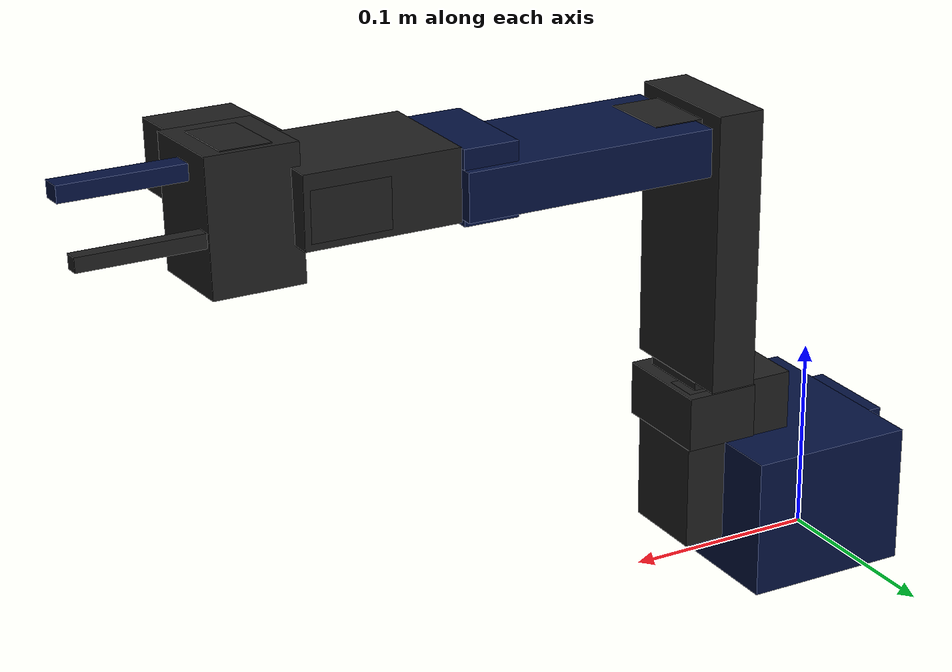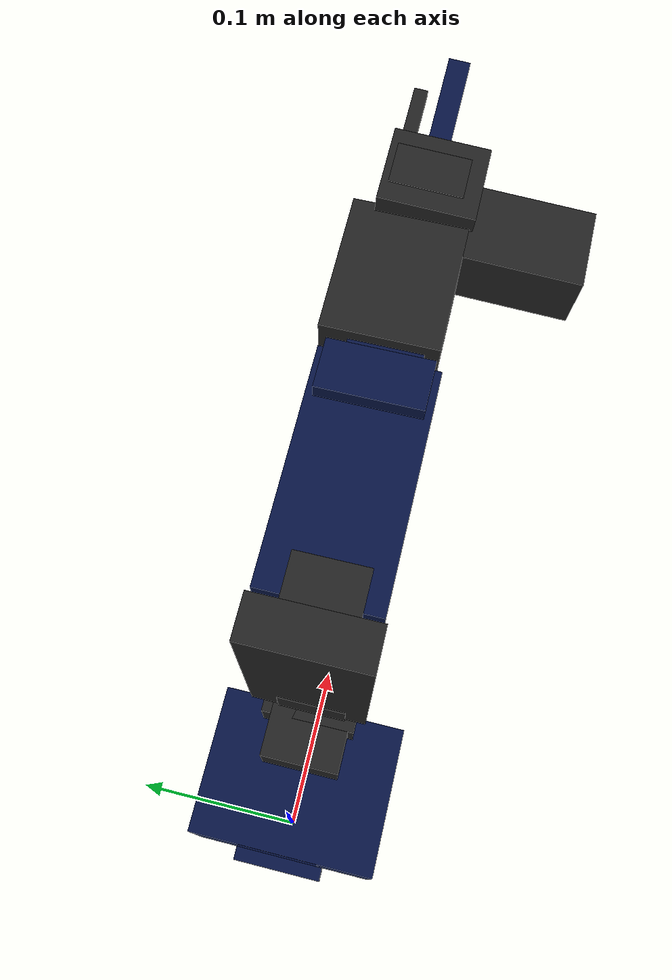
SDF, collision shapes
<sdf version='1.11'>
  <model name='so101_new_calib'>
    <!-- Base-anchored articulated model. The initial joint state comes from
         dataset row 149464 after applying the follower calibration convention. -->
    <static>false</static>
    <self_collide>false</self_collide>
    <link name='base_link'>
      <gravity>false</gravity>
      <inertial>
        <pose>0.0137179 -5.1971100000000001e-05 0.033484300000000002 0 0 0</pose>
        <mass>0.14699999999999999</mass>
        <inertia>
          <ixx>0.00011468600000000001</ixx>
          <ixy>-4.5978699999999999e-07</ixy>
          <ixz>4.9715099999999996e-06</ixz>
          <iyy>0.000136117</iyy>
          <iyz>9.7527499999999998e-08</iyz>
          <izz>0.000130364</izz>
        </inertia>
      </inertial>
      <collision name='base_link_collision'>
        <pose>0.012935482 0.00137434595 0.051399929 1.5708 0 1.5708</pose>
        <geometry>
          <box><size>0.04765 0.03140 0.08020</size></box>
        </geometry>
      </collision>
      <collision name='base_link_collision_1'>
        <pose>0.021135423 0 0.0335998974 1.5708 0 1.5708</pose>
        <geometry>
          <box><size>0.11093 0.07200 0.08700</size></box>
        </geometry>
      </collision>
      <collision name='base_link_collision_2'>
        <pose>0.0263353 0 0.04410 0 0 0</pose>
        <geometry>
          <box><size>0.04540 0.02480 0.03960</size></box>
        </geometry>
      </collision>
      <collision name='base_link_collision_3'>
        <pose>-0.0271826999 -0.000199427042 0.047399986 1.5708 0 1.5708</pose>
        <geometry>
          <box><size>0.05100 0.04200 0.00760</size></box>
        </geometry>
      </collision>
      <visual name='base_link_visual'>
        <pose>-0.00636471 -9.94414e-05 -0.0023999999999999998 1.5708 -1.8318679906315083e-15 1.5708</pose>
        <geometry>
          <mesh>
            <scale>1 1 1</scale>
            <uri>meshes/base_motor_holder_so101_v1.stl</uri>
          </mesh>
        </geometry>
        <material>
          <diffuse>0.0187499989 0.0687500015 0.25 1</diffuse>
          <ambient>0.0187499989 0.0687500015 0.25 1</ambient>
        </material>
      </visual>
      <visual name='base_link_visual_1'>
        <pose>-0.00636471 -8.9765700000000002e-09 -0.0023999999999999998 1.5708 -5.5511151231257827e-17 1.5708</pose>
        <geometry>
          <mesh>
            <scale>1 1 1</scale>
            <uri>meshes/base_so101_v2.stl</uri>
          </mesh>
        </geometry>
        <material>
          <diffuse>0.0187499989 0.0687500015 0.25 1</diffuse>
          <ambient>0.0187499989 0.0687500015 0.25 1</ambient>
        </material>
      </visual>
      <visual name='base_link_visual_2'>
        <pose>0.026335299999999999 -8.9765700000000002e-09 0.043700000000000003 -8.2114800000000001e-16 7.8451300000000007e-18 1.249e-15</pose>
        <geometry>
          <mesh>
            <scale>1 1 1</scale>
            <uri>meshes/sts3215_03a_v1.stl</uri>
          </mesh>
        </geometry>
        <material>
          <diffuse>0.125 0.125 0.125 1</diffuse>
          <ambient>0.125 0.125 0.125 1</ambient>
        </material>
      </visual>
      <visual name='base_link_visual_3'>
        <pose>-0.030982699999999998 -0.00019944099999999999 0.047399999999999998 1.5708 -1.3600232051658168e-14 1.5708</pose>
        <geometry>
          <mesh>
            <scale>1 1 1</scale>
            <uri>meshes/waveshare_mounting_plate_so101_v2.stl</uri>
          </mesh>
        </geometry>
        <material>
          <diffuse>0.0187499989 0.0687500015 0.25 1</diffuse>
          <ambient>0.0187499989 0.0687500015 0.25 1</ambient>
        </material>
      </visual>
    </link>
    <joint name='base_to_world' type='fixed'>
      <parent>world</parent>
      <child>base_link</child>
    </joint>
    <joint name='shoulder_pan' type='revolute'>
      <pose relative_to='base_link'>0.038835300000000003 -8.9765700000000002e-09 0.062399999999999997 3.1415899999999999 4.182529999990079e-17 -3.1415899999999999</pose>
      <parent>base_link</parent>
      <child>shoulder_link</child>
      <axis>
        <xyz>0 0 1</xyz>
        <limit>
          <lower>-2.148864718609</lower>
          <upper>2.148864718609</upper>
          <effort>3.35</effort>
          <velocity>1.5</velocity>
        </limit>
        <dynamics>
          <damping>0.02</damping>
          <friction>0.005</friction>
          <spring_reference>0</spring_reference>
          <spring_stiffness>0</spring_stiffness>
        </dynamics>
      </axis>
    </joint>
    <link name='shoulder_link'>
      <gravity>false</gravity>
      <!-- Joint position comes only from config/initial_pose.yaml. -->
      <pose relative_to='shoulder_pan'>0 0 0 0 0 0</pose>
      <inertial>
        <pose>-0.0307604 -1.66727e-05 -0.0252713 0 0 0</pose>
        <mass>0.100006</mass>
        <inertia>
          <ixx>8.3758999999999995e-05</ixx>
          <ixy>7.5552500000000001e-08</ixy>
          <ixz>-1.1634200000000001e-06</ixz>
          <iyy>8.1040300000000004e-05</iyy>
          <iyz>1.5466300000000001e-07</iyz>
          <izz>2.39783e-05</izz>
        </inertia>
      </inertial>
      <collision name='shoulder_link_collision'>
        <pose>-0.0303992 0.00002224168 -0.0417 1.5707963268 1.5707963268 0</pose>
        <geometry>
          <box><size>0.04540 0.02480 0.03960</size></box>
        </geometry>
      </collision>
      <collision name='shoulder_link_collision_1'>
        <pose>-0.0315506722 0.00116246261 -0.0240000062 1.5707963268 -1.5707963268 0</pose>
        <geometry>
          <box><size>0.02800 0.03810 0.05509</size></box>
        </geometry>
      </collision>
      <collision name='shoulder_link_collision_2'>
        <pose>-0.0176991995 0.00002208592 0.00410000091 -1.5708 0 0</pose>
        <geometry>
          <box><size>0.05980 0.08420 0.04600</size></box>
        </geometry>
      </collision>
      <visual name='shoulder_link_visual'>
        <pose>-0.030399200000000001 0.00042224100000000001 -0.041700000000000001 1.570796326794897 1.5707963267948966 0</pose>
        <geometry>
          <mesh>
            <scale>1 1 1</scale>
            <uri>meshes/sts3215_03a_v1.stl</uri>
          </mesh>
        </geometry>
        <material>
          <diffuse>0.125 0.125 0.125 1</diffuse>
          <ambient>0.125 0.125 0.125 1</ambient>
        </material>
      </visual>
      <visual name='shoulder_link_visual_1'>
        <pose>-0.067599199999999998 -0.00017775899999999999 0.0158499 1.570796326794897 -1.5707963267948966 0</pose>
        <geometry>
          <mesh>
            <scale>1 1 1</scale>
            <uri>meshes/motor_holder_so101_base_v1.stl</uri>
          </mesh>
        </geometry>
        <material>
          <diffuse>0.0187499989 0.0687500015 0.25 1</diffuse>
          <ambient>0.0187499989 0.0687500015 0.25 1</ambient>
        </material>
      </visual>
      <visual name='shoulder_link_visual_2'>
        <pose>0.012200799999999999 2.22413e-05 0.046399999999999997 -1.5708 2.3522100000000016e-33 -1.7105694144590048e-49</pose>
        <geometry>
          <mesh>
            <scale>1 1 1</scale>
            <uri>meshes/rotation_pitch_so101_v1.stl</uri>
          </mesh>
        </geometry>
        <material>
          <diffuse>0.0187499989 0.0687500015 0.25 1</diffuse>
          <ambient>0.0187499989 0.0687500015 0.25 1</ambient>
        </material>
      </visual>
    </link>
    <joint name='shoulder_lift' type='revolute'>
      <pose relative_to='shoulder_link'>-0.030399200000000001 -0.0182778 -0.054199999999999998 1.5707926536057681 -1.5707926536662187 3.1415926535746808</pose>
      <parent>shoulder_link</parent>
      <child>upper_arm_link</child>
      <axis>
        <xyz>0 0 1</xyz>
        <limit>
          <lower>-1.767577405097</lower>
          <upper>1.767577405097</upper>
          <effort>3.35</effort>
          <velocity>1.5</velocity>
        </limit>
        <dynamics>
          <damping>0.02</damping>
          <friction>0.005</friction>
          <spring_reference>0</spring_reference>
          <spring_stiffness>0</spring_stiffness>
        </dynamics>
      </axis>
    </joint>
    <link name='upper_arm_link'>
      <gravity>false</gravity>
      <pose relative_to='shoulder_lift'>0 0 0 0 0 0</pose>
      <inertial>
        <pose>-0.089847099999999999 -0.0083822399999999991 0.018408899999999999 0 0 0</pose>
        <mass>0.10299999999999999</mass>
        <inertia>
          <ixx>4.0800200000000003e-05</ixx>
          <ixy>-1.9781900000000001e-05</ixy>
          <ixz>-4.0301599999999997e-08</ixz>
          <iyy>0.00014731799999999999</iyy>
          <iyz>8.9732600000000005e-09</iyz>
          <izz>0.00014248700000000001</izz>
        </inertia>
      </inertial>
      <collision name='upper_arm_link_collision'>
        <pose>-0.11257 -0.0155 0.0183000007 -3.14159 0 -1.5708</pose>
        <geometry>
          <box><size>0.04540 0.02480 0.03960</size></box>
        </geometry>
      </collision>
      <collision name='upper_arm_link_collision_1'>
        <pose>-0.059084999 -0.000249994505 0.020150032 3.14159 0 0</pose>
        <geometry>
          <box><size>0.14217 0.02450 0.06730</size></box>
        </geometry>
      </collision>
      <visual name='upper_arm_link_visual'>
        <pose>-0.11257 -0.0155 0.018700000000000001 -3.1415899999999999 -5.2735572493871254e-16 -1.5708</pose>
        <geometry>
          <mesh>
            <scale>1 1 1</scale>
            <uri>meshes/sts3215_03a_v1.stl</uri>
          </mesh>
        </geometry>
        <material>
          <diffuse>0.125 0.125 0.125 1</diffuse>
          <ambient>0.125 0.125 0.125 1</ambient>
        </material>
      </visual>
      <visual name='upper_arm_link_visual_1'>
        <pose>-0.065085000000000004 0.012 0.018200000000000001 3.1415899999999999 0 -1.3091100000000003e-30</pose>
        <geometry>
          <mesh>
            <scale>1 1 1</scale>
            <uri>meshes/upper_arm_so101_v1.stl</uri>
          </mesh>
        </geometry>
        <material>
          <diffuse>0.0187499989 0.0687500015 0.25 1</diffuse>
          <ambient>0.0187499989 0.0687500015 0.25 1</ambient>
        </material>
      </visual>
    </link>
    <joint name='elbow_flex' type='revolute'>
      <pose relative_to='upper_arm_link'>-0.11257 -0.028000000000000001 1.7376299999999999e-16 -3.6360800000000002e-16 8.7430100000000044e-16 1.5708</pose>
      <parent>upper_arm_link</parent>
      <child>lower_arm_link</child>
      <axis>
        <xyz>0 0 1</xyz>
        <limit>
          <lower>-1.714642144267</lower>
          <upper>1.714642144267</upper>
          <effort>3.35</effort>
          <velocity>1.5</velocity>
        </limit>
        <dynamics>
          <damping>0.02</damping>
          <friction>0.005</friction>
          <spring_reference>0</spring_reference>
          <spring_stiffness>0</spring_stiffness>
        </dynamics>
      </axis>
    </joint>
    <link name='lower_arm_link'>
      <gravity>false</gravity>
      <pose relative_to='elbow_flex'>0 0 0 0 0 0</pose>
      <inertial>
        <pose>-0.098070099999999993 0.00324376 0.0182831 0 0 0</pose>
        <mass>0.104</mass>
        <inertia>
          <ixx>2.8743800000000001e-05</ixx>
          <ixy>7.4115199999999998e-06</ixy>
          <ixz>1.26409e-06</ixz>
          <iyy>0.000159844</iyy>
          <iyz>-4.90188e-08</iyz>
          <izz>0.00014529000000000001</izz>
        </inertia>
      </inertial>
      <collision name='lower_arm_link_collision'>
        <pose>-0.053349899 0 0.0201999154 3.14159 0 0</pose>
        <geometry>
          <box><size>0.13070 0.02400 0.06440</size></box>
        </geometry>
      </collision>
      <collision name='lower_arm_link_collision_1'>
        <pose>-0.104699806 0.00344999502 0.0199955766 -3.14159 0 0</pose>
        <geometry>
          <box><size>0.02800 0.03690 0.05640</size></box>
        </geometry>
      </collision>
      <collision name='lower_arm_link_collision_2'>
        <pose>-0.1224 0.0052 0.0183000007 -3.14159 0 -3.14159</pose>
        <geometry>
          <box><size>0.04540 0.02480 0.03960</size></box>
        </geometry>
      </collision>
      <visual name='lower_arm_link_visual'>
        <pose>-0.064849900000000002 -0.032000000000000001 0.018200000000000001 3.1415899999999999 -1.6704779438076223e-52 6.672020000000002e-31</pose>
        <geometry>
          <mesh>
            <scale>1 1 1</scale>
            <uri>meshes/under_arm_so101_v1.stl</uri>
          </mesh>
        </geometry>
        <material>
          <diffuse>0.0187499989 0.0687500015 0.25 1</diffuse>
          <ambient>0.0187499989 0.0687500015 0.25 1</ambient>
        </material>
      </visual>
      <visual name='lower_arm_link_visual_1'>
        <pose>-0.064849900000000002 -0.032000000000000001 0.017999999999999999 -3.1415899999999999 -2.5535100000000003e-15 -1.8338708692037182e-30</pose>
        <geometry>
          <mesh>
            <scale>1 1 1</scale>
            <uri>meshes/motor_holder_so101_wrist_v1.stl</uri>
          </mesh>
        </geometry>
        <material>
          <diffuse>0.0187499989 0.0687500015 0.25 1</diffuse>
          <ambient>0.0187499989 0.0687500015 0.25 1</ambient>
        </material>
      </visual>
      <visual name='lower_arm_link_visual_2'>
        <pose>-0.12239999999999999 0.0051999999999999998 0.018700000000000001 -3.1415899999999999 0 -3.1415899999999999</pose>
        <geometry>
          <mesh>
            <scale>1 1 1</scale>
            <uri>meshes/sts3215_03a_v1.stl</uri>
          </mesh>
        </geometry>
        <material>
          <diffuse>0.125 0.125 0.125 1</diffuse>
          <ambient>0.125 0.125 0.125 1</ambient>
        </material>
      </visual>
    </link>
    <joint name='wrist_flex' type='revolute'>
      <pose relative_to='lower_arm_link'>-0.13489999999999999 0.0051999999999999998 3.6235500000000001e-17 4.0245600000000001e-15 8.6736199999999979e-16 -1.5708</pose>
      <parent>lower_arm_link</parent>
      <child>wrist_link</child>
      <axis>
        <xyz>0 0 1</xyz>
        <limit>
          <lower>-1.834321864404</lower>
          <upper>1.834321864404</upper>
          <effort>3.35</effort>
          <velocity>1.5</velocity>
        </limit>
        <dynamics>
          <damping>0.015</damping>
          <friction>0.004</friction>
          <spring_reference>0</spring_reference>
          <spring_stiffness>0</spring_stiffness>
        </dynamics>
      </axis>
    </joint>
    <link name='wrist_link'>
      <gravity>false</gravity>
      <pose relative_to='wrist_flex'>0 0 0 0 0 0</pose>
      <inertial>
        <pose>-0.000103312 -0.038614299999999997 0.028115600000000001 0 0 0</pose>
        <mass>0.079000000000000001</mass>
        <inertia>
          <ixx>3.6826299999999997e-05</ixx>
          <ixy>1.7893e-08</ixy>
          <ixz>-5.28128e-08</ixz>
          <iyy>2.5391000000000001e-05</iyy>
          <iyz>3.6412e-06</iyz>
          <izz>2.0999999999999999e-05</izz>
        </inertia>
      </inertial>
      <collision name='wrist_link_collision'>
        <pose>0 -0.0427999993 0.0306 1.5707963268 1.5707963268 0</pose>
        <geometry>
          <box><size>0.04540 0.02480 0.03960</size></box>
        </geometry>
      </collision>
      <collision name='wrist_link_collision_1'>
        <pose>-0.00217012409 -0.0269153538 0.0221499996 -1.5707963268 -1.5707963268 0</pose>
        <geometry>
          <box><size>0.06230 0.03566 0.07783</size></box>
        </geometry>
      </collision>
      <visual name='wrist_link_visual'>
        <pose>8.3266699999999998e-17 -0.0424 0.030599999999999999 1.570796326794897 1.5707963267948966 0</pose>
        <geometry>
          <mesh>
            <scale>1 1 1</scale>
            <uri>meshes/sts3215_03a_no_horn_v1.stl</uri>
          </mesh>
        </geometry>
        <material>
          <diffuse>0.125 0.125 0.125 1</diffuse>
          <ambient>0.125 0.125 0.125 1</ambient>
        </material>
      </visual>
      <visual name='wrist_link_visual_1'>
        <pose>0 -0.028000000000000001 0.018100000000000002 -1.570796326794897 -1.5707963267948966 0</pose>
        <geometry>
          <mesh>
            <scale>1 1 1</scale>
            <uri>meshes/wrist_roll_pitch_so101_v2.stl</uri>
          </mesh>
        </geometry>
        <material>
          <diffuse>0.0187499989 0.0687500015 0.25 1</diffuse>
          <ambient>0.0187499989 0.0687500015 0.25 1</ambient>
        </material>
      </visual>
    </link>
    <joint name='wrist_roll' type='revolute'>
      <pose relative_to='wrist_link'>5.5511199999999995e-17 -0.061100000000000002 0.018100000000000002 1.5708 0.048679500000000001 3.1415899999999999</pose>
      <parent>wrist_link</parent>
      <child>gripper_link</child>
      <axis>
        <xyz>0 0 1</xyz>
        <limit>
          <lower>-3.141592653590</lower>
          <upper>3.141592653590</upper>
          <effort>3.35</effort>
          <velocity>1.5</velocity>
        </limit>
        <dynamics>
          <damping>0.012</damping>
          <friction>0.004</friction>
          <spring_reference>0</spring_reference>
          <spring_stiffness>0</spring_stiffness>
        </dynamics>
      </axis>
    </joint>
    <link name='gripper_link'>
      <gravity>false</gravity>
      <pose relative_to='wrist_roll'>0 0 0 0 0 0</pose>
      <inertial>
        <pose>-0.003190789305693558 0.00019931780918281479 -0.024965131524881012 0 0 0</pose>
        <mass>0.107000001</mass>
        <inertia>
          <ixx>3.161259476646135e-05</ixx>
          <ixy>-4.0784700800520209e-07</ixy>
          <ixz>-5.3836296816088778e-06</ixz>
          <iyy>5.1613206392104757e-05</iyy>
          <iyz>-4.7052925658153663e-08</iyz>
          <izz>4.2731466040794472e-05</izz>
        </inertia>
      </inertial>
      <collision name='gripper_link_collision'>
        <pose>0.0077 0.000499999321 -0.0234000015 -1.5708 0 0</pose>
        <geometry>
          <box><size>0.04540 0.02480 0.03960</size></box>
        </geometry>
      </collision>
      <collision name='gripper_palm_collision'>
        <pose>-0.0026 -0.002 -0.0225 -3.14159 0 0</pose>
        <geometry>
          <box><size>0.0652 0.0520 0.0450</size></box>
        </geometry>
      </collision>
      <collision name='gripper_fixed_finger_collision'>
        <pose>-0.008 0.018 -0.073 0 0 0</pose>
        <geometry>
          <box><size>0.007 0.008 0.065</size></box>
        </geometry>
      </collision>
      <!-- Conservative primitive for the integrated wrist-camera bracket.
           It supplements the original jaw collision above without using a
           high-poly concave STL for contact simulation. -->
      <collision name='gripper_link_wrist_camera_mount_collision'>
        <pose>0.0025 -0.0547 -0.0060 0 0 0</pose>
        <geometry>
          <box><size>0.035 0.069 0.045</size></box>
        </geometry>
      </collision>
      <collision name='gripper_link_fixed_joint_lump__fpv_camera_collision_collision_2'>
        <pose>0.0025 -0.068980 -0.004345 3.1415926535897931 1.1344640137963142 1.5707963267948966</pose>
        <geometry>
          <box>
            <size>0.018 0.032 0.032</size>
          </box>
        </geometry>
      </collision>
      <visual name='gripper_link_visual'>
        <pose>0.0077000000000000002 0.0001 -0.023400000000000001 -1.5708 -5.1917900000000034e-17 -1.6653299999999999e-16</pose>
        <geometry>
          <mesh>
            <scale>1 1 1</scale>
            <uri>meshes/sts3215_03a_v1.stl</uri>
          </mesh>
        </geometry>
        <material>
          <diffuse>0.125 0.125 0.125 1</diffuse>
          <ambient>0.125 0.125 0.125 1</ambient>
        </material>
      </visual>
      <visual name='gripper_link_visual_1'>
        <pose>8.3266699999999998e-17 -0.00021821399999999999 0.00094970600000000003 -3.1415899999999999 -5.5511199999999995e-17 0</pose>
        <geometry>
          <mesh>
            <scale>0.001 0.001 0.001</scale>
            <uri>meshes/Wrist_Cam_Mount_32x32_UVC_Module_SO101.stl</uri>
          </mesh>
        </geometry>
        <material>
          <diffuse>0.0187499989 0.0687500015 0.25 1</diffuse>
          <ambient>0.0187499989 0.0687500015 0.25 1</ambient>
        </material>
      </visual>
      <visual name='gripper_link_fixed_joint_lump__fpv_camera_body_visual_2'>
        <pose>0.0025 -0.068980 -0.004345 3.1415926535897931 1.1344640137963142 1.5707963267948966</pose>
        <geometry>
          <box>
            <size>0.018 0.032 0.032</size>
          </box>
        </geometry>
        <material>
          <diffuse>0.0187499989 0.0187499989 0.0250000004 1</diffuse>
          <ambient>0.0187499989 0.0187499989 0.0250000004 1</ambient>
        </material>
      </visual>
      <sensor name='fpv_camera' type='camera'>
        <always_on>true</always_on>
        <update_rate>30</update_rate>
        <topic>/so101/camera/fpv/image</topic>
        <camera name='fpv'>
          <horizontal_fov>1.0471975512</horizontal_fov>
          <image>
            <width>640</width>
            <height>480</height>
            <format>R8G8B8</format>
          </image>
          <clip>
            <near>0.014999999999999999</near>
            <far>5</far>
          </clip>
          <noise>
            <type>gaussian</type>
            <mean>0</mean>
            <stddev>0.002</stddev>
          </noise>
        </camera>
        <pose>0.0025 -0.065176 -0.012501 3.1415926535897931 1.1344640137963142 1.5707963267948966</pose>
      </sensor>
    </link>
    <joint name='gripper' type='revolute'>
      <pose relative_to='gripper_link'>0.020199999999999999 0.018800000000000001 -0.023400000000000001 1.5708 -5.2428400000000033e-08 -1.4155300054270541e-15</pose>
      <parent>gripper_link</parent>
      <child>moving_jaw_so101_v1_link</child>
      <axis>
        <xyz>0 0 1</xyz>
        <limit>
          <lower>-0.17453299999999999</lower>
          <upper>1.74533</upper>
          <effort>2.0</effort>
          <velocity>1.0</velocity>
        </limit>
        <dynamics>
          <damping>0.010</damping>
          <friction>0.003</friction>
          <spring_reference>0</spring_reference>
          <spring_stiffness>0</spring_stiffness>
        </dynamics>
      </axis>
    </joint>
    <link name='moving_jaw_so101_v1_link'>
      <gravity>false</gravity>
      <!-- Dataset gripper.pos is a percentage, not degrees. 9.04729271% maps
           linearly onto the URDF range [-10, 100] degrees. -->
      <pose relative_to='gripper'>0 0 0 0 0 0</pose>
      <inertial>
        <pose>-0.0015749500000000001 -0.0300244 0.019275500000000001 0 0 0</pose>
        <mass>0.012</mass>
        <inertia>
          <ixx>6.6142699999999999e-06</ixx>
          <ixy>-3.1980700000000003e-07</ixy>
          <ixz>-5.90717e-09</ixz>
          <iyy>1.8903200000000001e-06</iyy>
          <iyz>-1.09945e-07</iyz>
          <izz>5.2873799999999998e-06</izz>
        </inertia>
      </inertial>
      <collision name='moving_jaw_so101_v1_link_collision'>
        <pose>-0.00115101133 -0.036002669 0.0189 0 0 0</pose>
        <geometry>
          <box><size>0.008 0.092 0.012</size></box>
        </geometry>
      </collision>
      <visual name='moving_jaw_so101_v1_link_visual'>
        <pose>-5.5511199999999995e-17 -5.5511199999999995e-17 0.0189 9.5314500000000005e-17 6.9388900000000004e-18 1.24077e-24</pose>
        <geometry>
          <mesh>
            <scale>1 1 1</scale>
            <uri>meshes/moving_jaw_so101_v1.stl</uri>
          </mesh>
        </geometry>
        <material>
          <diffuse>0.0187499989 0.0687500015 0.25 1</diffuse>
          <ambient>0.0187499989 0.0687500015 0.25 1</ambient>
        </material>
      </visual>
    </link>
    <frame name='fpv_camera_mount' attached_to='gripper_link'>
      <pose>0.0025 -0.065176 -0.012501 3.1415926535897931 1.1344640137963142 1.5707963267948966</pose>
    </frame>
    <frame name='fpv_camera_link' attached_to='fpv_camera_mount'>
      <pose>0 0 0 0 0 0</pose>
    </frame>
    <frame name='gripper_frame_joint' attached_to='gripper_link'>
      <pose>-0.0079000000000000008 -0.00021812099999999999 -0.098127400000000004 3.1415926535897931 2.6535897933558441e-06 3.1415926535897931</pose>
    </frame>
    <frame name='gripper_frame_link' attached_to='gripper_frame_joint'>
      <pose>0 0 0 0 0 0</pose>
    </frame>
    <plugin filename='gz_ros2_control-system'
            name='gz_ros2_control::GazeboSimROS2ControlPlugin'>
      <parameters>@CONTROLLERS_YAML@</parameters>
      <robot_param>robot_description</robot_param>
      <robot_param_node>robot_state_publisher</robot_param_node>
      <hold_joints>true</hold_joints>
      <!-- gz_ros2_control multiplies position error by controller update rate;
           0.1 gives a well-damped effective gain of 10 s^-1 at 100 Hz. -->
      <position_proportional_gain>0.1</position_proportional_gain>
    </plugin>
    <plugin filename='gz-sim-joint-state-publisher-system'
            name='gz::sim::systems::JointStatePublisher'>
      <topic>/so101/joint_states</topic>
      <update_rate>30</update_rate>
    </plugin>
  </model>
</sdf>
